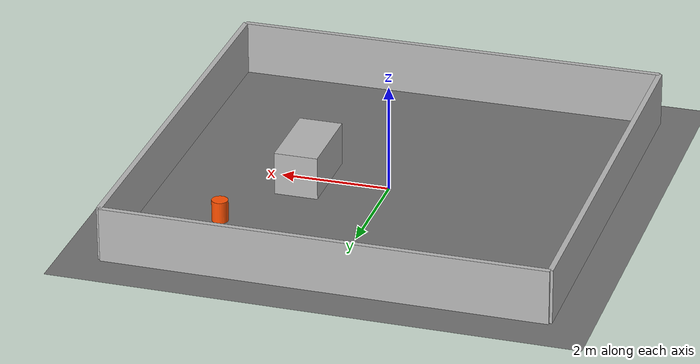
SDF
<?xml version="1.0"?>
<sdf version="1.9">
  <world name="phoenix_test_world">
    <gravity>0 0 -9.81</gravity>
    <plugin filename="gz-sim-physics-system" name="gz::sim::systems::Physics"/>
    <plugin filename="gz-sim-sensors-system" name="gz::sim::systems::Sensors">
      <render_engine>ogre2</render_engine>
    </plugin>
    <plugin filename="gz-sim-scene-broadcaster-system" name="gz::sim::systems::SceneBroadcaster"/>
    <plugin filename="gz-sim-user-commands-system" name="gz::sim::systems::UserCommands"/>

    <light type="directional" name="sun">
      <cast_shadows>true</cast_shadows>
      <pose>0 0 10 0 0 0</pose>
      <diffuse>0.8 0.8 0.8 1</diffuse>
      <specular>0.2 0.2 0.2 1</specular>
      <direction>-0.5 0.5 -1</direction>
    </light>

    <model name="floor">
      <static>true</static>
      <link name="link">
        <collision name="collision">
          <geometry><plane><normal>0 0 1</normal><size>20 20</size></plane></geometry>
        </collision>
        <visual name="visual">
          <geometry><plane><normal>0 0 1</normal><size>20 20</size></plane></geometry>
          <material><ambient>0.35 0.35 0.35 1</ambient><diffuse>0.45 0.45 0.45 1</diffuse></material>
        </visual>
      </link>
    </model>

    <model name="north_wall">
      <static>true</static>
      <pose>0 4 0.5 0 0 0</pose>
      <link name="link"><collision name="collision"><geometry><box><size>8 0.1 1</size></box></geometry></collision><visual name="visual"><geometry><box><size>8 0.1 1</size></box></geometry></visual></link>
    </model>
    <model name="south_wall">
      <static>true</static>
      <pose>0 -4 0.5 0 0 0</pose>
      <link name="link"><collision name="collision"><geometry><box><size>8 0.1 1</size></box></geometry></collision><visual name="visual"><geometry><box><size>8 0.1 1</size></box></geometry></visual></link>
    </model>
    <model name="east_wall">
      <static>true</static>
      <pose>4 0 0.5 0 0 1.5708</pose>
      <link name="link"><collision name="collision"><geometry><box><size>8 0.1 1</size></box></geometry></collision><visual name="visual"><geometry><box><size>8 0.1 1</size></box></geometry></visual></link>
    </model>
    <model name="west_wall">
      <static>true</static>
      <pose>-4 0 0.5 0 0 1.5708</pose>
      <link name="link"><collision name="collision"><geometry><box><size>8 0.1 1</size></box></geometry></collision><visual name="visual"><geometry><box><size>8 0.1 1</size></box></geometry></visual></link>
    </model>

    <model name="test_obstacle">
      <static>true</static>
      <pose>1.5 0 0.4 0 0 0</pose>
      <link name="link"><collision name="collision"><geometry><box><size>0.8 1.5 0.8</size></box></geometry></collision><visual name="visual"><geometry><box><size>0.8 1.5 0.8</size></box></geometry></visual></link>
    </model>

    <model name="fire_target">
      <static>true</static>
      <pose>2.5 2.0 0.2 0 0 0</pose>
      <link name="link">
        <collision name="collision">
          <geometry><cylinder><radius>0.15</radius><length>0.4</length></cylinder></geometry>
        </collision>
        <visual name="visual">
          <geometry><cylinder><radius>0.15</radius><length>0.4</length></cylinder></geometry>
          <material>
            <ambient>1.0 0.31 0.0 1.0</ambient>
            <diffuse>1.0 0.31 0.0 1.0</diffuse>
            <emissive>0.8 0.2 0.0 1.0</emissive>
          </material>
        </visual>
      </link>
    </model>
  </world>
</sdf>
